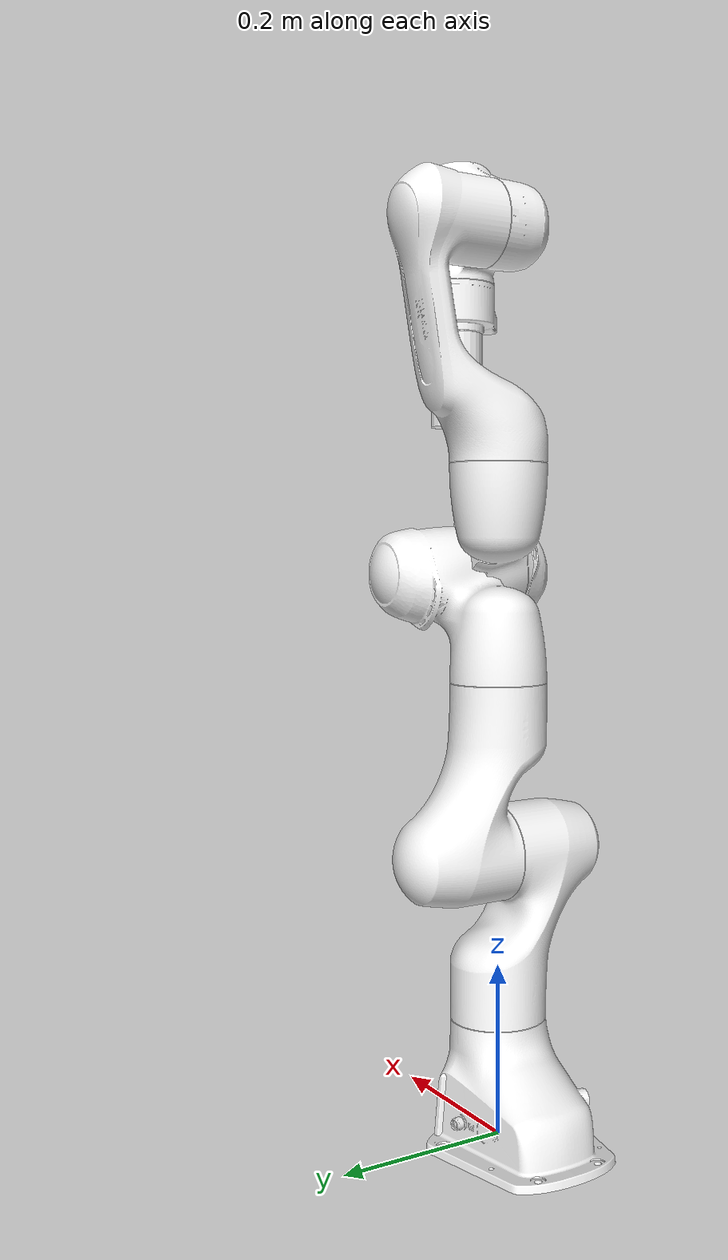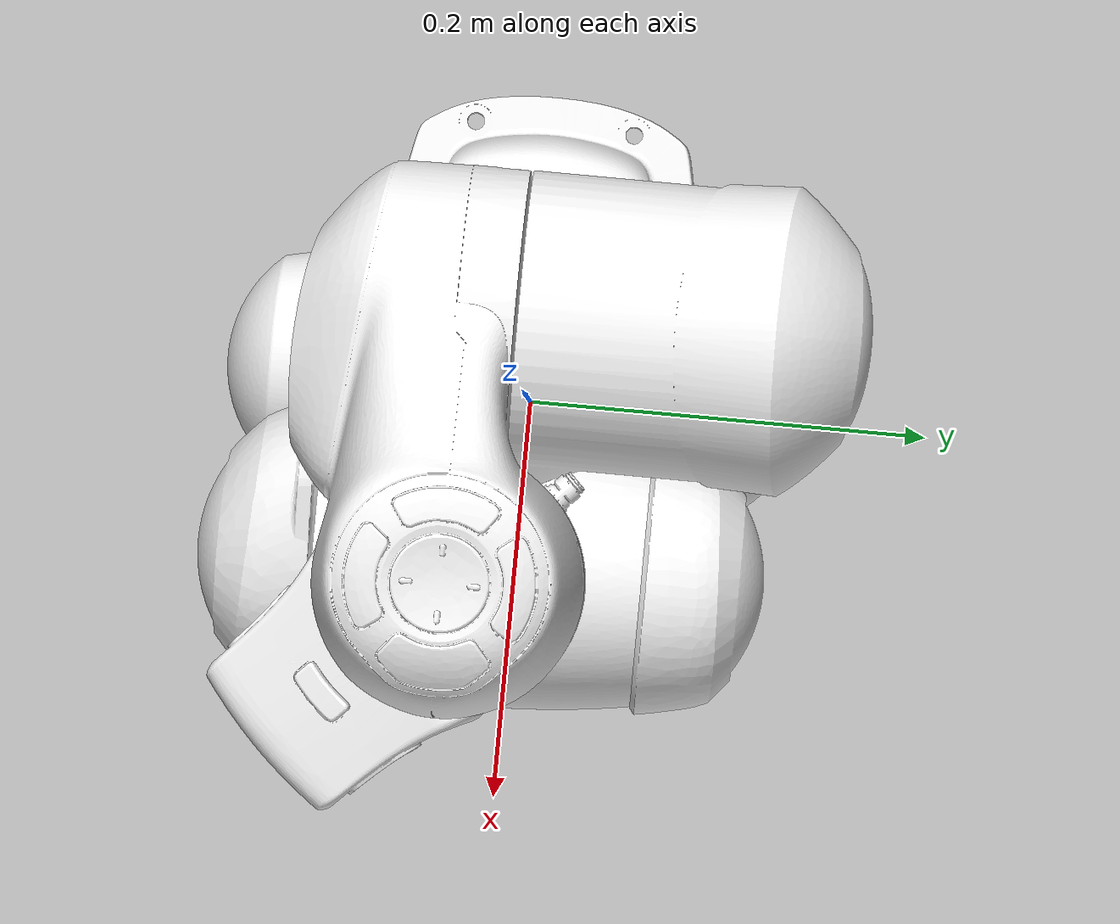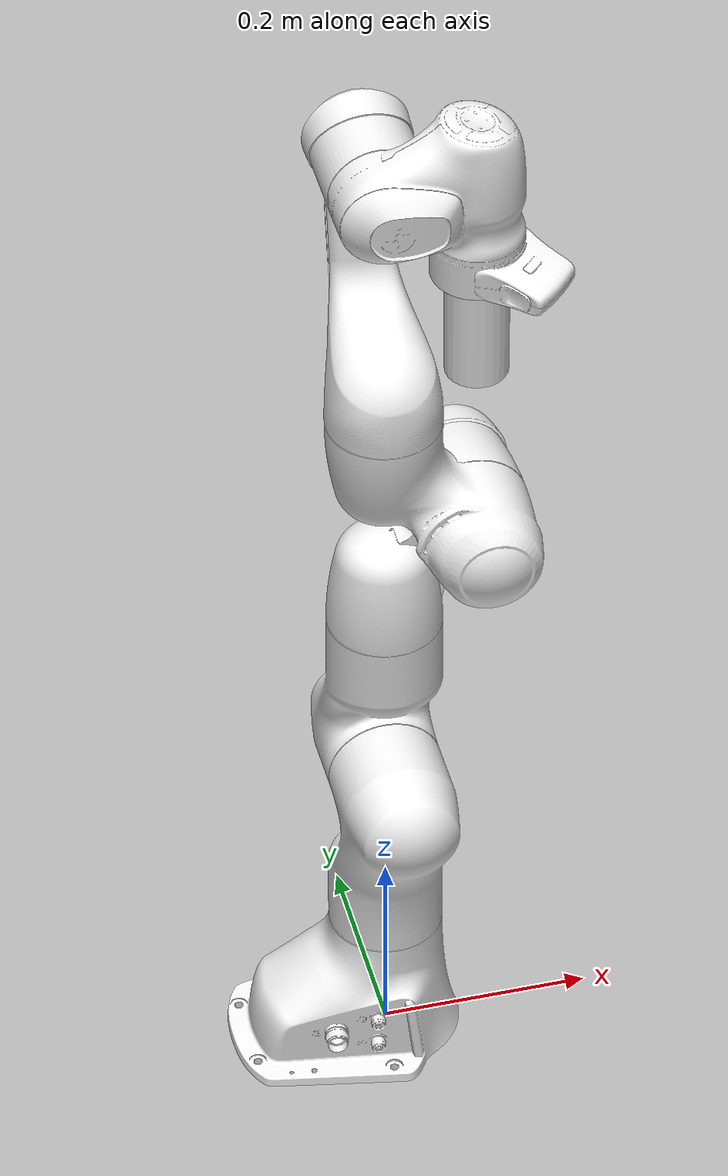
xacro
<?xml version="1.0"?>
<robot name="panda_sim" xmlns:xacro="http://www.ros.org/wiki/xacro">
  <xacro:arg name="name" default="panda"/>
  <xacro:arg name="prefix" default=""/>
  <xacro:arg name="controllers_file" default=""/>

  <xacro:property name="name" value="$(arg name)"/>
  <xacro:property name="prefix" value="$(arg prefix)"/>

  <material name="panda_white">
    <color rgba="0.95 0.95 0.95 1.0"/>
  </material>

  <link name="${prefix}panda_link0">
    <visual>
      <geometry>
        <mesh filename="package://moveit_resources_panda_description/meshes/visual/link0.dae"/>
      </geometry>
      <material name="panda_white"/>
    </visual>
    <collision>
      <geometry>
        <mesh filename="package://moveit_resources_panda_description/meshes/collision/link0.stl"/>
      </geometry>
    </collision>
    <inertial>
      <origin xyz="-0.041018 -0.00014 0.049974" rpy="0 0 0"/>
      <mass value="0.629769"/>
      <inertia ixx="0.00315" ixy="0.00000082904" ixz="0.00015" iyy="0.00388" iyz="0.0000082299" izz="0.004285"/>
    </inertial>
  </link>

  <link name="${prefix}panda_link1">
    <visual>
      <geometry>
        <mesh filename="package://moveit_resources_panda_description/meshes/visual/link1.dae"/>
      </geometry>
      <material name="panda_white"/>
    </visual>
    <collision>
      <geometry>
        <mesh filename="package://moveit_resources_panda_description/meshes/collision/link1.stl"/>
      </geometry>
    </collision>
    <inertial>
      <origin xyz="0.003875 0.002081 -0.04762" rpy="0 0 0"/>
      <mass value="4.970684"/>
      <inertia ixx="0.70337" ixy="-0.000139" ixz="0.006772" iyy="0.70661" iyz="0.019169" izz="0.009117"/>
    </inertial>
  </link>

  <joint name="${prefix}panda_joint1" type="revolute">
    <origin rpy="0 0 0" xyz="0 0 0.333"/>
    <parent link="${prefix}panda_link0"/>
    <child link="${prefix}panda_link1"/>
    <axis xyz="0 0 1"/>
    <limit effort="87" lower="-2.9671" upper="2.9671" velocity="2.3925"/>
    <dynamics damping="0.3" friction="0.02"/>
  </joint>

  <link name="${prefix}panda_link2">
    <visual>
      <geometry>
        <mesh filename="package://moveit_resources_panda_description/meshes/visual/link2.dae"/>
      </geometry>
      <material name="panda_white"/>
    </visual>
    <collision>
      <geometry>
        <mesh filename="package://moveit_resources_panda_description/meshes/collision/link2.stl"/>
      </geometry>
    </collision>
    <inertial>
      <origin xyz="-0.003141 -0.02872 0.003495" rpy="0 0 0"/>
      <mass value="0.646926"/>
      <inertia ixx="0.007962" ixy="-0.003925" ixz="0.010254" iyy="0.02811" iyz="0.000704" izz="0.025995"/>
    </inertial>
  </link>

  <joint name="${prefix}panda_joint2" type="revolute">
    <origin rpy="-1.57079632679 0 0" xyz="0 0 0"/>
    <parent link="${prefix}panda_link1"/>
    <child link="${prefix}panda_link2"/>
    <axis xyz="0 0 1"/>
    <limit effort="87" lower="-1.8326" upper="1.8326" velocity="2.3925"/>
    <dynamics damping="0.3" friction="0.02"/>
  </joint>

  <link name="${prefix}panda_link3">
    <visual>
      <geometry>
        <mesh filename="package://moveit_resources_panda_description/meshes/visual/link3.dae"/>
      </geometry>
      <material name="panda_white"/>
    </visual>
    <collision>
      <geometry>
        <mesh filename="package://moveit_resources_panda_description/meshes/collision/link3.stl"/>
      </geometry>
    </collision>
    <inertial>
      <origin xyz="0.027518 0.039252 -0.066502" rpy="0 0 0"/>
      <mass value="3.228604"/>
      <inertia ixx="0.037242" ixy="-0.004761" ixz="-0.011396" iyy="0.036155" iyz="-0.012805" izz="0.01083"/>
    </inertial>
  </link>

  <joint name="${prefix}panda_joint3" type="revolute">
    <origin rpy="1.57079632679 0 0" xyz="0 -0.316 0"/>
    <parent link="${prefix}panda_link2"/>
    <child link="${prefix}panda_link3"/>
    <axis xyz="0 0 1"/>
    <limit effort="87" lower="-2.9671" upper="2.9671" velocity="2.3925"/>
    <dynamics damping="0.3" friction="0.02"/>
  </joint>

  <link name="${prefix}panda_link4">
    <visual>
      <geometry>
        <mesh filename="package://moveit_resources_panda_description/meshes/visual/link4.dae"/>
      </geometry>
      <material name="panda_white"/>
    </visual>
    <collision>
      <geometry>
        <mesh filename="package://moveit_resources_panda_description/meshes/collision/link4.stl"/>
      </geometry>
    </collision>
    <inertial>
      <origin xyz="-0.05317 0.104419 0.027454" rpy="0 0 0"/>
      <mass value="3.587895"/>
      <inertia ixx="0.025853" ixy="0.007796" ixz="-0.001332" iyy="0.019552" iyz="0.008641" izz="0.028323"/>
    </inertial>
  </link>

  <joint name="${prefix}panda_joint4" type="revolute">
    <origin rpy="1.57079632679 0 0" xyz="0.0825 0 0"/>
    <parent link="${prefix}panda_link3"/>
    <child link="${prefix}panda_link4"/>
    <axis xyz="0 0 1"/>
    <limit effort="87" lower="-3.1416" upper="0.0873" velocity="2.3925"/>
    <dynamics damping="0.25" friction="0.02"/>
  </joint>

  <link name="${prefix}panda_link5">
    <visual>
      <geometry>
        <mesh filename="package://moveit_resources_panda_description/meshes/visual/link5.dae"/>
      </geometry>
      <material name="panda_white"/>
    </visual>
    <collision>
      <geometry>
        <mesh filename="package://moveit_resources_panda_description/meshes/collision/link5.stl"/>
      </geometry>
    </collision>
    <inertial>
      <origin xyz="-0.011953 0.041065 -0.038437" rpy="0 0 0"/>
      <mass value="1.225946"/>
      <inertia ixx="0.035549" ixy="-0.002117" ixz="-0.004037" iyy="0.029474" iyz="0.000229" izz="0.008627"/>
    </inertial>
  </link>

  <joint name="${prefix}panda_joint5" type="revolute">
    <origin rpy="-1.57079632679 0 0" xyz="-0.0825 0.384 0"/>
    <parent link="${prefix}panda_link4"/>
    <child link="${prefix}panda_link5"/>
    <axis xyz="0 0 1"/>
    <limit effort="12" lower="-2.9671" upper="2.9671" velocity="2.871"/>
    <dynamics damping="0.20" friction="0.015"/>
  </joint>

  <link name="${prefix}panda_link6">
    <visual>
      <geometry>
        <mesh filename="package://moveit_resources_panda_description/meshes/visual/link6.dae"/>
      </geometry>
      <material name="panda_white"/>
    </visual>
    <collision>
      <geometry>
        <mesh filename="package://moveit_resources_panda_description/meshes/collision/link6.stl"/>
      </geometry>
    </collision>
    <inertial>
      <origin xyz="0.060149 -0.014117 -0.010517" rpy="0 0 0"/>
      <mass value="1.666555"/>
      <inertia ixx="0.001964" ixy="0.000109" ixz="-0.001158" iyy="0.004354" iyz="0.000341" izz="0.005433"/>
    </inertial>
  </link>

  <joint name="${prefix}panda_joint6" type="revolute">
    <origin rpy="1.57079632679 0 0" xyz="0 0 0"/>
    <parent link="${prefix}panda_link5"/>
    <child link="${prefix}panda_link6"/>
    <axis xyz="0 0 1"/>
    <limit effort="12" lower="-0.0873" upper="3.8223" velocity="2.871"/>
    <dynamics damping="0.20" friction="0.015"/>
  </joint>

  <link name="${prefix}panda_link7">
    <visual>
      <geometry>
        <mesh filename="package://moveit_resources_panda_description/meshes/visual/link7.dae"/>
      </geometry>
      <material name="panda_white"/>
    </visual>
    <collision>
      <geometry>
        <mesh filename="package://moveit_resources_panda_description/meshes/collision/link7.stl"/>
      </geometry>
    </collision>
    <inertial>
      <origin xyz="0.010517 -0.004252 0.061597" rpy="0 0 0"/>
      <mass value="0.735522"/>
      <inertia ixx="0.012516" ixy="-0.000428" ixz="-0.00119" iyy="0.010027" iyz="-0.000741" izz="0.004815"/>
    </inertial>
  </link>

  <joint name="${prefix}panda_joint7" type="revolute">
    <origin rpy="1.57079632679 0 0" xyz="0.088 0 0"/>
    <parent link="${prefix}panda_link6"/>
    <child link="${prefix}panda_link7"/>
    <axis xyz="0 0 1"/>
    <limit effort="12" lower="-2.9671" upper="2.9671" velocity="2.871"/>
    <dynamics damping="0.20" friction="0.015"/>
  </joint>

  <link name="${prefix}panda_link8">
    <visual>
      <origin xyz="0 0 0.0535" rpy="0 0 0"/>
      <geometry>
        <cylinder radius="0.03" length="0.107"/>
      </geometry>
      <material name="panda_white"/>
    </visual>
    <collision>
      <origin xyz="0 0 0.0535" rpy="0 0 0"/>
      <geometry>
        <cylinder radius="0.03" length="0.107"/>
      </geometry>
    </collision>
    <inertial>
      <origin xyz="0 0 0.0535" rpy="0 0 0"/>
      <mass value="0.15"/>
      <inertia ixx="0.0002" ixy="0.0" ixz="0.0" iyy="0.0002" iyz="0.0" izz="0.00005"/>
    </inertial>
  </link>

  <joint name="${prefix}panda_joint8" type="fixed">
    <origin rpy="0 0 0" xyz="0 0 0.107"/>
    <parent link="${prefix}panda_link7"/>
    <child link="${prefix}panda_link8"/>
  </joint>

  <link name="${prefix}panda_tool0"/>
  <joint name="${prefix}panda_tool0_joint" type="fixed">
    <origin xyz="0 0 0" rpy="0 0 0"/>
    <parent link="${prefix}panda_link8"/>
    <child link="${prefix}panda_tool0"/>
  </joint>

  <ros2_control name="${name}_system" type="system">
    <hardware>
      <plugin>gz_ros2_control/GazeboSimSystem</plugin>
    </hardware>

    <joint name="${prefix}panda_joint1">
      <command_interface name="position"/>
      <state_interface name="position"/>
      <state_interface name="velocity"/>
    </joint>
    <joint name="${prefix}panda_joint2">
      <command_interface name="position"/>
      <state_interface name="position"/>
      <state_interface name="velocity"/>
    </joint>
    <joint name="${prefix}panda_joint3">
      <command_interface name="position"/>
      <state_interface name="position"/>
      <state_interface name="velocity"/>
    </joint>
    <joint name="${prefix}panda_joint4">
      <command_interface name="position"/>
      <state_interface name="position"/>
      <state_interface name="velocity"/>
    </joint>
    <joint name="${prefix}panda_joint5">
      <command_interface name="position"/>
      <state_interface name="position"/>
      <state_interface name="velocity"/>
    </joint>
    <joint name="${prefix}panda_joint6">
      <command_interface name="position"/>
      <state_interface name="position"/>
      <state_interface name="velocity"/>
    </joint>
    <joint name="${prefix}panda_joint7">
      <command_interface name="position"/>
      <state_interface name="position"/>
      <state_interface name="velocity"/>
    </joint>
  </ros2_control>

  <transmission name="${prefix}panda_joint1_transmission">
    <type>transmission_interface/SimpleTransmission</type>
    <joint name="${prefix}panda_joint1">
      <hardwareInterface>hardware_interface/PositionJointInterface</hardwareInterface>
    </joint>
    <actuator name="${prefix}panda_joint1_motor">
      <hardwareInterface>hardware_interface/PositionJointInterface</hardwareInterface>
      <mechanicalReduction>1.0</mechanicalReduction>
    </actuator>
  </transmission>

  <transmission name="${prefix}panda_joint2_transmission">
    <type>transmission_interface/SimpleTransmission</type>
    <joint name="${prefix}panda_joint2">
      <hardwareInterface>hardware_interface/PositionJointInterface</hardwareInterface>
    </joint>
    <actuator name="${prefix}panda_joint2_motor">
      <hardwareInterface>hardware_interface/PositionJointInterface</hardwareInterface>
      <mechanicalReduction>1.0</mechanicalReduction>
    </actuator>
  </transmission>

  <transmission name="${prefix}panda_joint3_transmission">
    <type>transmission_interface/SimpleTransmission</type>
    <joint name="${prefix}panda_joint3">
      <hardwareInterface>hardware_interface/PositionJointInterface</hardwareInterface>
    </joint>
    <actuator name="${prefix}panda_joint3_motor">
      <hardwareInterface>hardware_interface/PositionJointInterface</hardwareInterface>
      <mechanicalReduction>1.0</mechanicalReduction>
    </actuator>
  </transmission>

  <transmission name="${prefix}panda_joint4_transmission">
    <type>transmission_interface/SimpleTransmission</type>
    <joint name="${prefix}panda_joint4">
      <hardwareInterface>hardware_interface/PositionJointInterface</hardwareInterface>
    </joint>
    <actuator name="${prefix}panda_joint4_motor">
      <hardwareInterface>hardware_interface/PositionJointInterface</hardwareInterface>
      <mechanicalReduction>1.0</mechanicalReduction>
    </actuator>
  </transmission>

  <transmission name="${prefix}panda_joint5_transmission">
    <type>transmission_interface/SimpleTransmission</type>
    <joint name="${prefix}panda_joint5">
      <hardwareInterface>hardware_interface/PositionJointInterface</hardwareInterface>
    </joint>
    <actuator name="${prefix}panda_joint5_motor">
      <hardwareInterface>hardware_interface/PositionJointInterface</hardwareInterface>
      <mechanicalReduction>1.0</mechanicalReduction>
    </actuator>
  </transmission>

  <transmission name="${prefix}panda_joint6_transmission">
    <type>transmission_interface/SimpleTransmission</type>
    <joint name="${prefix}panda_joint6">
      <hardwareInterface>hardware_interface/PositionJointInterface</hardwareInterface>
    </joint>
    <actuator name="${prefix}panda_joint6_motor">
      <hardwareInterface>hardware_interface/PositionJointInterface</hardwareInterface>
      <mechanicalReduction>1.0</mechanicalReduction>
    </actuator>
  </transmission>

  <transmission name="${prefix}panda_joint7_transmission">
    <type>transmission_interface/SimpleTransmission</type>
    <joint name="${prefix}panda_joint7">
      <hardwareInterface>hardware_interface/PositionJointInterface</hardwareInterface>
    </joint>
    <actuator name="${prefix}panda_joint7_motor">
      <hardwareInterface>hardware_interface/PositionJointInterface</hardwareInterface>
      <mechanicalReduction>1.0</mechanicalReduction>
    </actuator>
  </transmission>

  <gazebo>
    <plugin filename="libgz_ros2_control-system.so" name="gz_ros2_control::GazeboSimROS2ControlPlugin">
      <parameters>$(arg controllers_file)</parameters>
    </plugin>
  </gazebo>
</robot>
